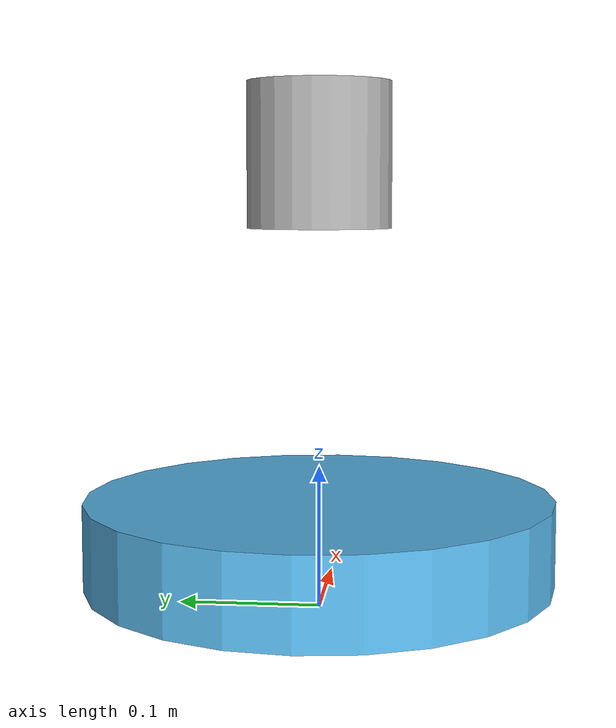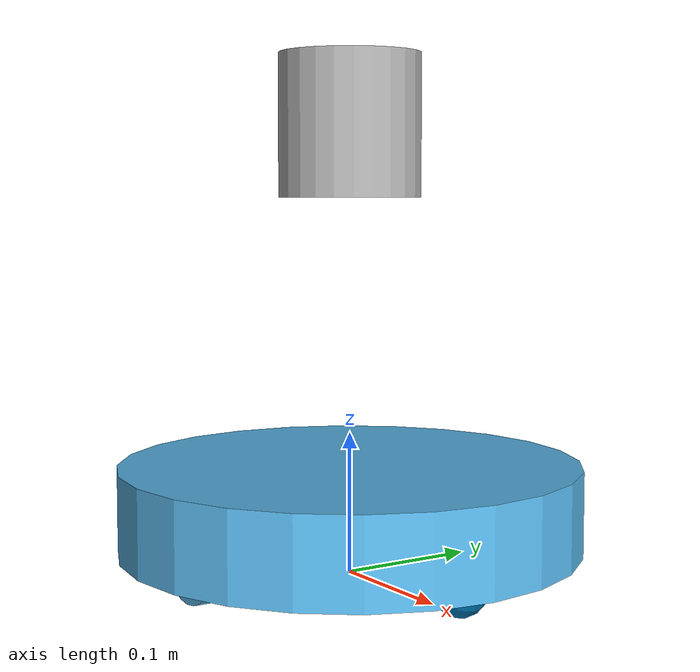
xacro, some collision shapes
<?xml version="1.0" ?>
<robot name="create2_with_lidar"
  xmlns:xacro="http://ros.org/wiki/xacro">
  <xacro:include filename="$(find my_robot_description)/urdf/create_base.urdf.xacro" />
  <xacro:include filename="$(find my_robot_description)/urdf/create_2_gazebo.urdf.xacro" />

  <xacro:create_base wheel_separation="0.235" base_diameter="0.3485" version="2">
    <mesh filename="package://create_description/meshes/create_2.dae" />
  </xacro:create_base>
</robot>

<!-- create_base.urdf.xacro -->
<robot xmlns:xacro="http://ros.org/wiki/xacro">
  <xacro:property name="PI" value="3.1415926535897931" />

  <xacro:macro name="create_wheel" params="prefix y_offset wheel_radius wheel_width">
    <link name="${prefix}_wheel_link">
      <inertial>
        <origin xyz="0 0 0" />
        <mass value="0.01" />
        <inertia ixx="0.001" ixy="0.0" ixz="0.0" iyy="0.001" iyz="0.0" izz="0.001" />
      </inertial>

      <visual>
        <origin xyz="0 0 0" rpy="0 ${PI/2} ${PI/2}" />
        <geometry>
          <cylinder radius="${wheel_radius}" length="${wheel_width}" />
        </geometry>
      </visual>

      <collision>
        <origin xyz="0 0 0" rpy="0 ${PI/2} ${PI/2}" />
        <geometry>
          <cylinder radius="${wheel_radius}" length="${wheel_width}" />
        </geometry>
      </collision>
    </link>

    <joint name="${prefix}_wheel_joint" type="continuous">
      <origin xyz="0 ${y_offset} 0.015" rpy="0 0 0" />
      <parent link="base_link" />
      <child link="${prefix}_wheel_link" />
      <axis xyz="0 1 0" />
    </joint>
  </xacro:macro>

  <xacro:macro name="create_base" params="diffdrive_update_rate:=40 wheel_separation wheel_radius:=0.036 wheel_width:=0.024 wheel_torque:=1.0 wheel_accel:=1.8 mass_kg:=3.5 base_diameter version *mesh">
    <xacro:include filename="$(find create_description)/urdf/create_base_gazebo.urdf.xacro" />

    <material name="green">
      <color rgba="0 0.8 0 1"/>
    </material>

    <link name="base_footprint">
      <visual>
        <origin xyz="0 0 0" rpy="0 0 0" />
        <geometry>
          <box size="0.001 0.001 0.001" />
        </geometry>
        <material name="green" />
      </visual>

      <collision>
        <origin xyz="0 0 0.017" rpy="0 0 0" />
        <geometry>
          <box size="0.001 0.001 0.001" />
        </geometry>
      </collision>
    </link>

    <link name="base_link">
      <inertial>
        <mass value="2" />
        <origin xyz="0 0 0.0" />
        <inertia ixx="0.01" ixy="0.0" ixz="0.0" iyy="0.01" iyz="0.0" izz="0.5" />
      </inertial>

      <visual>
        <origin xyz=" 0 0 0.0308" rpy="0 0 0" />
        <geometry>
          <xacro:insert_block name="mesh" />
        </geometry>
      </visual>

      <collision>
        <origin xyz="0.0 0.0 0.0308" rpy="0 0 0" />
        <geometry>
          <cylinder length="0.0611632" radius="0.16495" />
        </geometry>
      </collision>
    </link>

    <link name="wall_sensor_link">
      <inertial>
        <mass value="0.01" />
        <origin xyz="0 0 0" />
        <inertia ixx="0.001" ixy="0.0" ixz="0.0" iyy="0.001" iyz="0.0" izz="0.001" />
      </inertial>
    </link>

    <link name="left_cliff_sensor_link">
      <inertial>
        <mass value="0.01" />
        <origin xyz="0 0 0" />
        <inertia ixx="0.001" ixy="0.0" ixz="0.0" iyy="0.001" iyz="0.0" izz="0.001" />
      </inertial>
    </link>

    <link name="right_cliff_sensor_link">
      <inertial>
        <mass value="0.01" />
        <origin xyz="0 0 0" />
        <inertia ixx="0.001" ixy="0.0" ixz="0.0" iyy="0.001" iyz="0.0" izz="0.001" />
      </inertial>
    </link>

    <link name="leftfront_cliff_sensor_link">
      <inertial>
        <mass value="0.01" />
        <origin xyz="0 0 0" />
        <inertia ixx="1.0" ixy="0.0" ixz="0.0" iyy="0.01" iyz="0.0" izz="0.01" />
      </inertial>
    </link>

    <link name="rightfront_cliff_sensor_link">
      <inertial>
        <mass value="0.01" />
        <origin xyz="0 0 0" />
        <inertia ixx="0.001" ixy="0.0" ixz="0.0" iyy="0.001" iyz="0.0" izz="0.001" />
      </inertial>
    </link>

    <!-- LIDAR Link -->
    <link name="lidar_link">
        <inertial>
            <origin xyz="0 0 0" rpy="0 0 0"/>
            <mass value="0.1"/>
            <inertia ixx="0.0001" ixy="0" ixz="0" iyy="0.0001" iyz="0" izz="0.0001"/>
        </inertial>
        <visual>
            <origin xyz="0 0 0.1" rpy="0 0 0"/>
            <geometry>
                <cylinder radius="0.05" length="0.1"/>
            </geometry>
        </visual>
        <collision>
            <origin xyz="0 0 0.1" rpy="0 0 0"/>
            <geometry>
                <cylinder radius="0.05" length="0.1"/>
            </geometry>
        </collision>
    </link>

    <joint name="base_footprint_joint" type="fixed">
      <origin xyz="0 0 0.017" rpy="0 0 0" />
      <parent link="base_footprint" />
      <child link="base_link" />
    </joint>

    <joint name="base_wall_sensor_joint" type="fixed">
      <origin xyz="0.09 -0.120 0.042" rpy="0 0 -1.0" />
      <parent link="base_link" />
      <child link="wall_sensor_link" />
    </joint>

    <joint name="base_left_cliff_sensor_joint" type="fixed">
      <origin xyz="0.07 0.14 0.01" rpy="0 ${PI/2} 0" />
      <parent link="base_link" />
      <child link="left_cliff_sensor_link" />
    </joint>

    <joint name="base_right_cliff_sensor_joint" type="fixed">
      <origin xyz="0.07 -0.14 0.01" rpy="0 ${PI/2} 0" />
      <parent link="base_link" />
      <child link="right_cliff_sensor_link" />
    </joint>

    <joint name="base_leftfront_cliff_sensor_joint" type="fixed">
      <origin xyz="0.15 0.04 0.01" rpy="0 ${PI/2} 0" />
      <parent link="base_link" />
      <child link="leftfront_cliff_sensor_link" />
    </joint>

    <joint name="base_rightfront_cliff_sensor_joint" type="fixed">
      <origin xyz="0.15 -0.04 0.01" rpy="0 ${PI/2} 0" />
      <parent link="base_link" />
      <child link="rightfront_cliff_sensor_link" />
    </joint>

    <!-- Joint connecting the LIDAR to the base_link -->
    <joint name="lidar_joint" type="fixed">
        <origin xyz="0 0 0.2" rpy="0 0 0"/>
        <parent link="base_link"/>
        <child link="lidar_link"/>
    </joint>

    <xacro:create_wheel prefix="left" y_offset="${wheel_separation / 2}" wheel_radius="${wheel_radius}" wheel_width="${wheel_width}"/>
    <xacro:create_wheel prefix="right" y_offset="${wheel_separation / -2}" wheel_radius="${wheel_radius}" wheel_width="${wheel_width}"/>

    <!-- bumper sensor link -->
    <link name="bumper_link">
      <collision name="bumper_link_collision">
        <origin xyz="0 0 0" rpy="0 0 0"/>
        <geometry>
          <mesh filename="package://create_description/meshes/bumper_${version}.dae"/>
        </geometry>
      </collision>
    </link>

    <joint name="bumper_joint" type="fixed">
      <origin xyz="-0.0025 0 0" rpy="0 0 0" />
      <parent link="base_link" />
      <child link="bumper_link" />
      <axis xyz="0 0 0" />
    </joint>

    <!-- omni_ir sensor link -->
    <link name="omni_ir_link">
    </link>

    <joint name="omni_ir_joint" type="fixed">
      <origin xyz="${base_diameter/2 - 0.025} 0 0.0775" rpy="0 0 0" />
      <parent link="base_link" />
      <child link="omni_ir_link" />
      <axis xyz="0 0 0" />
    </joint>

    <link name="front_wheel_link">
      <inertial>
        <origin xyz="0 0 0" />
        <mass value="0.01" />
        <inertia ixx="0.001" ixy="0.0" ixz="0.0" iyy="0.001" iyz="0.0" izz="0.001" />
      </inertial>

      <visual>
        <origin xyz="0 0 0" rpy="0 ${PI/2} ${PI/2}" />
        <geometry>
          <sphere radius="0.018" />
        </geometry>
      </visual>

      <collision>
        <origin xyz="0 0 0" rpy="0 ${PI/2} ${PI/2}" />
        <geometry>
          <sphere radius="0.018" />
        </geometry>
      </collision>
    </link>

    <!-- fixed because there's no transmission -->
    <joint name="front_castor_joint" type="fixed">
      <origin xyz="0.13 0 0.0" rpy="0 0 0" />
      <parent link="base_link" />
      <child link="front_wheel_link" />
      <axis xyz="0 1 0" />
    </joint>

    <joint name="gyro_joint" type="fixed">
      <axis xyz="0 1 0" />
      <origin xyz="0 0 0.04" rpy="0 0 0" />
      <parent link="base_link" />
      <child link="gyro_link" />
    </joint>
    <link name="gyro_link">
      <inertial>
        <mass value="0.001" />
        <origin xyz="0 0 0" rpy="0 0 0" />
        <inertia ixx="0.0001" ixy="0" ixz="0" iyy="0.000001" iyz="0" izz="0.0001" />
      </inertial>
    </link>

    <!-- Simulation sensors -->
    <xacro:sim_create_base/>
    <xacro:sim_create_wall_sensor/>
    <xacro:sim_create_cliff_sensors/>
    <xacro:sim_imu/>
    <xacro:sim_bumper/>
  </xacro:macro>
</robot>
